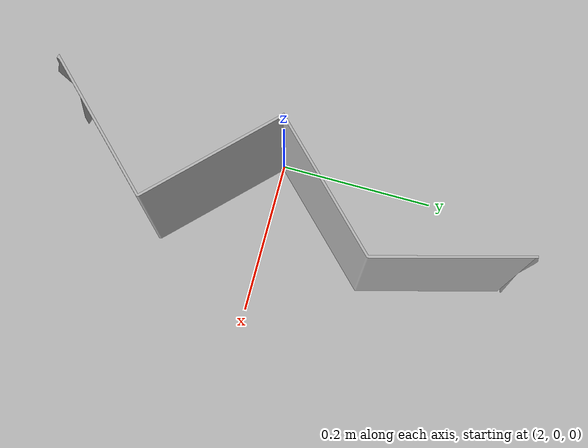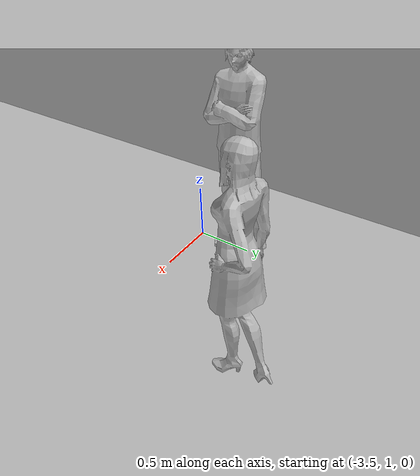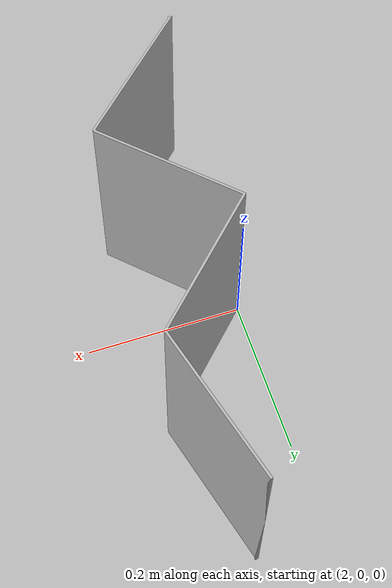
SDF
<sdf version="1.6">
 <world name="default">
  <scene><ambient>0.5 0.5 0.5 1</ambient><background>0.5 0.5 0.5 1</background><shadows>0</shadows></scene>
  <physics name="default_physics" default="0" type="ode">
   <ode>
    <solver>
     <type>quick</type>
     <iters>200</iters>
     <sor>1.3</sor>
     <use_dynamic_moi_rescaling>0</use_dynamic_moi_rescaling>
    </solver>
    <constraints>
     <cfm>0</cfm>
     <erp>0.2</erp>
     <contact_max_correcting_vel>100</contact_max_correcting_vel>
     <contact_surface_layer>0.001</contact_surface_layer>
    </constraints>
   </ode>
   <real_time_update_rate>1000</real_time_update_rate>
   <max_step_size>0.002</max_step_size>
   <real_time_factor>1</real_time_factor>
  </physics>
  <model name="docking_base">
   <link name="docking_pattern">
    <pose>2 0 0 0 -0 0</pose>
    <collision name="docking_pattern_collision">
     <geometry>
      <mesh>
       <uri>model://media/models/docking_pattern/meshes/models/docking_pattern.stl</uri>
       <scale>1 1 1</scale>
      </mesh>
     </geometry>
    </collision>
    <visual name="docking_pattern_visual">
     <geometry>
      <mesh>
       <uri>model://media/models/docking_pattern/meshes/models/docking_pattern.stl</uri>
       <scale>1 1 1</scale>
      </mesh>
     </geometry>
     <cast_shadows>0</cast_shadows>
    </visual>
   </link>
   <static>1</static>
  </model>
  <model name="7thmap">
   <pose>9 -10 0 0 -0 0</pose>
   <static>1</static>
   <link name="body">
    <collision name="collision">
     <geometry><mesh><uri>model://media/models/7thmap_new/7thmap.dae</uri></mesh></geometry>
     <surface>
      <friction>
       <ode><mu>1e+08</mu><mu2>1e+08</mu2><fdir1>0 0 0</fdir1><slip1>0</slip1><slip2>0</slip2></ode>
      </friction>
      <bounce><restitution_coefficient>0</restitution_coefficient><threshold>1e+06</threshold></bounce>
      <contact>
       <ode>
        <soft_cfm>0</soft_cfm>
        <soft_erp>0.2</soft_erp>
        <kp>1e+10</kp>
        <kd>1</kd>
        <max_vel>100</max_vel>
        <min_depth>0.0001</min_depth>
       </ode>
      </contact>
     </surface>
    </collision>
    <visual name="visual">
     <geometry><mesh><uri>model://media/models/7thmap_new/7thmap.dae</uri></mesh></geometry>
     <material><script><name>__default__</name><uri>__default__</uri></script></material>
     <cast_shadows>0</cast_shadows>
    </visual>
    <velocity_decay><linear>0</linear><angular>0</angular></velocity_decay>
   </link>
   <static>1</static>
  </model>
  <light name="my_light_01" type="directional">
   <pose>0 0 30 0 -0 0</pose>
   <diffuse>0.9 0.9 0.9 1</diffuse>
   <specular>0.6 0.6 0.6 1</specular>
   <attenuation><range>20</range></attenuation>
   <direction>0 0 -1</direction>
   <cast_shadows>0</cast_shadows>
  </light>
  <light name="my_light_02" type="directional">
   <pose>0 0 30 0 -0 0</pose>
   <diffuse>0.9 0.9 0.9 1</diffuse>
   <specular>0.6 0.6 0.6 1</specular>
   <attenuation><range>20</range></attenuation>
   <direction>-1 0 0</direction>
   <cast_shadows>0</cast_shadows>
  </light>
  <light name="my_light_03" type="directional">
   <pose>0 0 30 0 -0 0</pose>
   <diffuse>0.9 0.9 0.9 1</diffuse>
   <specular>0.6 0.6 0.6 1</specular>
   <attenuation><range>20</range></attenuation>
   <direction>0 -1 0</direction>
   <cast_shadows>0</cast_shadows>
  </light>
  <light name="my_light_04" type="directional">
   <pose>0 0 30 0 -0 0</pose>
   <diffuse>0.9 0.9 0.9 1</diffuse>
   <specular>0.6 0.6 0.6 1</specular>
   <attenuation><range>20</range></attenuation>
   <direction>0 0 1</direction>
   <cast_shadows>0</cast_shadows>
  </light>
  <light name="my_light_05" type="directional">
   <pose>0 0 30 0 -0 0</pose>
   <diffuse>0.9 0.9 0.9 1</diffuse>
   <specular>0.6 0.6 0.6 1</specular>
   <attenuation><range>20</range></attenuation>
   <direction>1 0 0</direction>
   <cast_shadows>0</cast_shadows>
  </light>
  <light name="my_light_06" type="directional">
   <pose>0 0 30 0 -0 0</pose>
   <diffuse>0.9 0.9 0.9 1</diffuse>
   <specular>0.6 0.6 0.6 1</specular>
   <attenuation><range>20</range></attenuation>
   <direction>0 1 0</direction>
   <cast_shadows>0</cast_shadows>
  </light>
  <gravity>0 0 -9.8</gravity>
  <magnetic_field>6e-06 2.3e-05 -4.2e-05</magnetic_field>
  <atmosphere type="adiabatic"/>
  <spherical_coordinates>
   <surface_model>EARTH_WGS84</surface_model>
   <latitude_deg>0</latitude_deg>
   <longitude_deg>0</longitude_deg>
   <elevation>0</elevation>
   <heading_deg>0</heading_deg>
  </spherical_coordinates>
  <model name="pessoa1">
   <static>0</static>
   <link name="base">
    <collision name="collision">
     <geometry>
      <mesh><uri>model://pessoa1/meshes/models/citizen_female.dae</uri><scale>0.4 0.4 0.4</scale></mesh>
     </geometry>
    </collision>
    <visual name="visual">
     <geometry>
      <mesh><uri>model://pessoa1/meshes/models/citizen_female.dae</uri><scale>0.4 0.4 0.4</scale></mesh>
     </geometry>
    </visual>
    <inertial>
     <inertia><ixx>1</ixx><ixy>0</ixy><ixz>0</ixz><iyy>1</iyy><iyz>0</iyz><izz>1</izz></inertia>
     <mass>1</mass>
    </inertial>
   </link>
   <pose>-2.43195 2.12584 0.000427 0.001611 -0.025095 -0.000757</pose>
  </model>
  <model name="pessoa2">
   <static>0</static>
   <link name="base">
    <collision name="collision">
     <geometry>
      <mesh><uri>model://pessoa2/meshes/models/citizen_male.dae</uri><scale>0.4 0.4 0.4</scale></mesh>
     </geometry>
    </collision>
    <visual name="visual">
     <geometry>
      <mesh><uri>model://pessoa2/meshes/models/citizen_male.dae</uri><scale>0.4 0.4 0.4</scale></mesh>
     </geometry>
    </visual>
    <inertial>
     <inertia><ixx>1</ixx><ixy>0</ixy><ixz>0</ixz><iyy>1</iyy><iyz>0</iyz><izz>1</izz></inertia>
     <mass>1</mass>
    </inertial>
   </link>
   <pose>-3.48764 1.46184 0.010911 0.012565 0.002311 1.56242</pose>
  </model>
  <audio><device>default</device></audio>
 </world>
</sdf>
